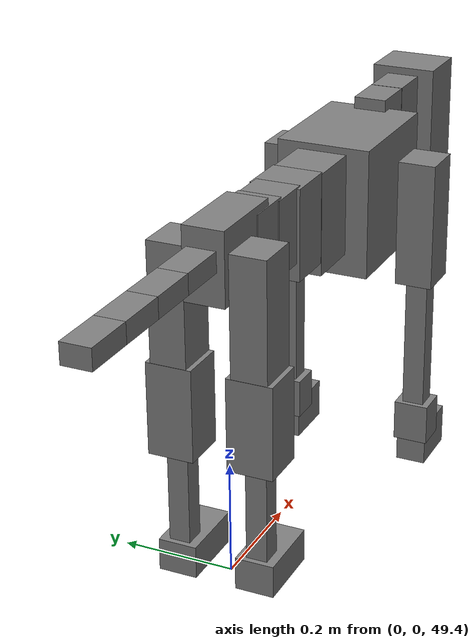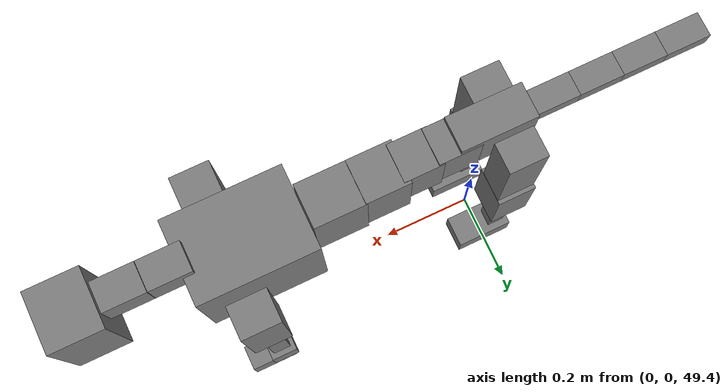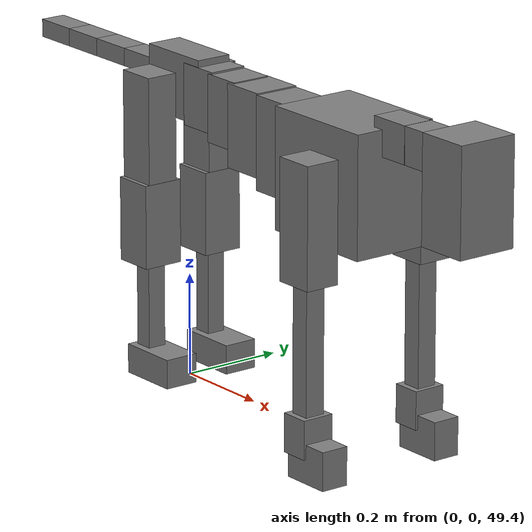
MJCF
<mujoco model="dog">

    <default>
        <joint armature="0.02" stiffness="1" damping="0.2" limited="true"/>
        <geom condim="3" friction="1 0.05 0.05" margin="0.01"/>
        <motor ctrllimited="true" ctrlrange="-1.0 1.0" forcelimited="true" gear="50"/>
    </default>

    <compiler inertiafromgeom="true" angle="radian"/>

    <option timestep="0.016" iterations="50" tolerance="1e-10" solver="Newton" jacobian="dense" cone="pyramidal"/>

    <size nconmax="20000" njmax="60000" nstack="5000000"/>
    <visual>
        <map force="0.1" zfar="30"/>
        <rgba haze="0.15 0.25 0.35 1"/>
        <quality shadowsize="2048"/>
        <global offwidth="800" offheight="800"/>
    </visual>

    <asset>
        <texture type="skybox" builtin="gradient" rgb1="0.3 0.5 0.7" rgb2="0 0 0" width="512" height="512"/>
        <texture name="texplane" type="2d" builtin="checker" rgb1=".2 .3 .4" rgb2=".1 0.15 0.2" width="512" height="512"
                 mark="cross" markrgb=".8 .8 .8"/>
        <texture name="texgeom" type="cube" builtin="flat" mark="cross" width="127" height="1278" rgb1="0.8 0.6 0.4"
                 rgb2="0.8 0.6 0.4" markrgb="1 1 1" random="0.01"/>

        <material name="matplane" reflectance="0.3" texture="texplane" texrepeat="1 1" texuniform="true"/>
        <material name="matgeom" texture="texgeom" texuniform="true" rgba="0.8 0.6 .4 1"/>
    </asset>

    <worldbody>
        <geom name="floor" pos="0 0 0" size="0 0 .25" type="plane" material="matplane" condim="3"/>

        <light directional="false" diffuse=".2 .2 .2" specular="0 0 0" pos="0 0 5" dir="0 0 -1" castshadow="false"/>
        <light mode="targetbodycom" target="torso" directional="false" diffuse=".8 .8 .8" specular="0.3 0.3 0.3"
               pos="0 0 4.0" dir="0 0 -1"/>

        <body name="root" pos="0 0 50">
            <freejoint name="root_1"/>
            <geom type="box" pos="0 0 -0.02" size="0.0774  0.0358  0.063" density="2030"/>

            <body name="spine1" pos="0.054 0 0">
                <joint name="spine1_y" axis="0 1 0" range="0 0.7" limited="true"/>
                <geom type="box" pos="0.02375 0 -0.03" size="0.04375  0.0375  0.05985" density="2030"/>

                <body name="spine2" pos="0.0612 0 0">
                    <joint name="spine2_y" axis="0 1 0" range="-0.15 0.15" limited="true"/>
                    <geom type="box" pos="0.03555  0  -0.04" size="0.04055  0.039  0.06615" density="2030"/>

                    <body name="spine3" pos="0.0730 0 0">
                        <joint name="spine3_y" axis="0 1 0" range="-0.15 0.15" limited="true"/>
                        <geom type="box" pos="0.03555  0  -0.057" size="0.04555  0.0445  0.081" density="2030"/>

                        <body name="spine4" pos="0.0780 0 0">
                            <joint name="spine4_y" axis="0 1 0" range="-0.15 0.15" limited="true"/>
                            <geom type="box" pos="0.05265  0  -0.07" size="0.05265  0.045  0.09135" density="2030"/>

                            <body name="torso" pos="0.1082 0 0">
                                <joint name="torso_y" axis="0 1 0" range="-0.15 0.15" limited="true"/>
                                <geom type="box" pos="0.11925  0  -0.085" size="0.11925  0.085  0.11745"
                                      density="2030"/>

                                <body name="neck1" pos="0.2160  0   0.0180">
                                    <joint name="neck1_y" axis="0 1 0" range="-1.2  -1" limited="true"/>
                                    <geom type="box" pos="0.0423  0  0" size="0.0423  0.03  0.036" density="2325"/>

                                    <body name="neck2" pos="0.0853  0  0">
                                        <joint name="neck2_y" axis="0 1 0" range="0.1  0" limited="true"/>
                                        <geom type="box" pos="0.0423  0  0" size="0.0423  0.03  0.036" density="2325"/>

                                        <body name="head" pos="0.0853  0  0">
                                            <joint name="head_y" axis="0 1 0" range="-0.3  -0.2" limited="true"/>
                                            <geom type="box" pos="0.0531  0  -0.055" size="0.0531  0.06  0.1044"
                                                  density="4030"/>

                                        </body>
                                    </body>
                                </body>

                                <body name="front_shoulder" pos="0.156  0   -0.0480">
                                    <joint name="front_shoulder_y" axis="0 1 0" range="-1 1.5" limited="true"/>
                                    <geom type="box" pos="0 0.13 -0.0899" size="0.0401  0.0343  0.1165" density="1158"/>
                                    <geom type="box" pos="0 -0.13 -0.0899" size="0.0401  0.0343  0.1165"
                                          density="1158"/>

                                    <body name="front_elbow" pos="0  0  -0.1797">
                                        <joint name="front_elbow_y" axis="0 1 0" range="-2 0" limited="true"/>
                                        <geom type="box" pos="0 0.13 -0.1434" size="0.0196  0.0200  0.1434"
                                              density="1081"/>
                                        <geom type="box" pos="0 -0.13 -0.1434" size="0.0196  0.0200  0.1434"
                                              density="1081"/>

                                        <body name="front_wrist" pos="0  0  -0.2869">
                                            <joint name="front_wrist_y" axis="0 1 0" range="-0.2 0" limited="true"/>
                                            <geom type="box" pos="0 0.13 -0.0245" size="0.0289  0.0321  0.0376"
                                                  density="1664"/>
                                            <geom type="box" pos="0 -0.13 -0.0245" size="0.0289  0.0321  0.0376"
                                                  density="1664"/>

                                            <body name="front_finger_end" pos="0  0  -0.0489">
                                                <joint name="front_finger_y" axis="0 1 0" range="-0.4 1"
                                                       limited="true"/>
                                                <geom type="box" pos="0.0276  0.13  -0.0223"
                                                      size="0.0506  0.0276  0.0373" density="1515"/>
                                                <geom type="box" pos="0.0276  -0.13  -0.0223"
                                                      size="0.0506  0.0276  0.0373" density="1515"/>

                                            </body>

                                        </body>
                                    </body>
                                </body>

                            </body>
                        </body>
                    </body>
                </body>
            </body>

            <body name="back_hip" pos="-0.03 0 -0.018">
                <joint name="back_hip_y" axis="0 1 0" range="-1.5 0.3" limited="true"/>
                <geom type="box" pos="0 0.07 -0.1004" size="0.0401  0.0315  0.1232" density="1154"/>
                <geom type="box" pos="0 -0.07 -0.1004" size="0.0401  0.0315  0.1232" density="1154"/>

                <body name="back_knee" pos="0  0  -0.2008">
                    <joint name="back_knee_y" axis="0 1 0" range="0 2.8" limited="true"/>
                    <geom type="box" pos="0 0.07 -0.0661" size="0.0407  0.0401  0.0816" density="1227"/>
                    <geom type="box" pos="0 -0.07 -0.0661" size="0.0407  0.0401  0.0816" density="1227"/>

                    <body name="back_ankle" pos="0  0  -0.1322">
                        <joint name="back_ankle_y" axis="0 1 0" range="-2.2 0" limited="true"/>
                        <geom type="box" pos="0 0.07 -0.0988" size="0.0185  0.0185  0.1100" density="1284"/>
                        <geom type="box" pos="0 -0.07 -0.0988" size="0.0185  0.0185  0.1100" density="1284"/>

                        <body name="back_toe_end" pos="0  0  -0.1976">
                            <joint name="back_toe_y" axis="0 1 0" range="-0.4 1" limited="true"/>
                            <geom type="box" pos="0.0340  0.07  -0.0137" size="0.0623  0.0340  0.0287" density="1515"/>
                            <geom type="box" pos="0.0340  -0.07  -0.0137" size="0.0623  0.0340  0.0287" density="1515"/>

                        </body>
                    </body>
                </body>
            </body>

            <body name="tail1" pos="-0.074 0 -0.006">
                <joint name="tail1_y" axis="0 1 0" range="-0.2 0.2" limited="true"/>
                <geom type="box" pos="-0.0536  0  0" size="0.045  0.025  0.0175" density="1587"/>

                <body name="tail2" pos="-0.09 0 0">
                    <joint name="tail2_y" axis="0 1 0" range="-0.2 0.2" limited="true"/>
                    <geom type="box" pos="-0.0536  0  0" size="0.045  0.025  0.0175" density="1587"/>

                    <body name="tail3" pos="-0.09 0 0">
                        <joint name="tail3_y" axis="0 1 0" range="-0.2 0.2" limited="true"/>
                        <geom type="box" pos="-0.0536  0  0" size="0.045  0.025  0.0175" density="1587"/>

                        <body name="tail4" pos="-0.09 0 0">
                            <joint name="tail4_y" axis="0 1 0" range="-0.2 0.2" limited="true"/>
                            <geom type="box" pos="-0.0536  0  0" size="0.045  0.025  0.0175" density="1587"/>

                        </body>
                    </body>
                </body>
            </body>
        </body>
    </worldbody>

    <actuator>
        <motor joint="spine1_y" forcerange="-150 150     "/>
        <motor joint="spine2_y" forcerange="-150 150     "/>
        <motor joint="spine3_y" forcerange="-150 150     "/>
        <motor joint="spine4_y" forcerange="-150 150     "/>
        <motor joint="torso_y" forcerange="-150 150     "/>
        <motor joint="neck1_y" forcerange="-100 100       "/>
        <motor joint="neck2_y" forcerange="-100 100       "/>
        <motor joint="head_y" forcerange="-150 150       "/>
        <motor joint="front_shoulder_y" forcerange="-164.10 164.41"/>
        <motor joint="front_elbow_y" forcerange="-115.40 130.09"/>
        <motor joint="front_wrist_y" forcerange="-138.85 118.08"/>
        <motor joint="front_finger_y" forcerange="-77.25 29.92"/>
        <motor joint="back_hip_y" forcerange="-233.86 385.66"/>
        <motor joint="back_knee_y" forcerange="-385.38 397.46"/>
        <motor joint="back_angle_y" forcerange="-83.43 112.01"/>
        <motor joint="back_toe_y" forcerange="-62.83 128.99"/>
        <motor joint="tail1_y" forcerange="-50 50     "/>
        <motor joint="tail2_y" forcerange="-50 50     "/>
        <motor joint="tail3_y" forcerange="-50 50     "/>
        <motor joint="tail4_y" forcerange="-50 50     "/>
    </actuator>
</mujoco>
